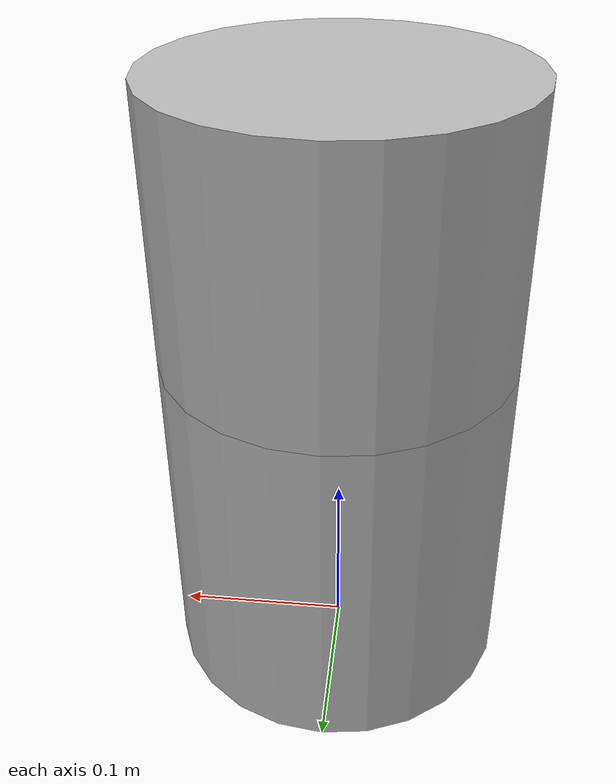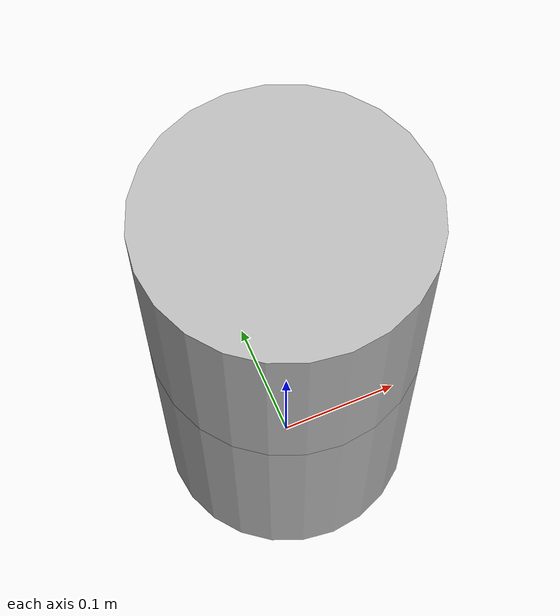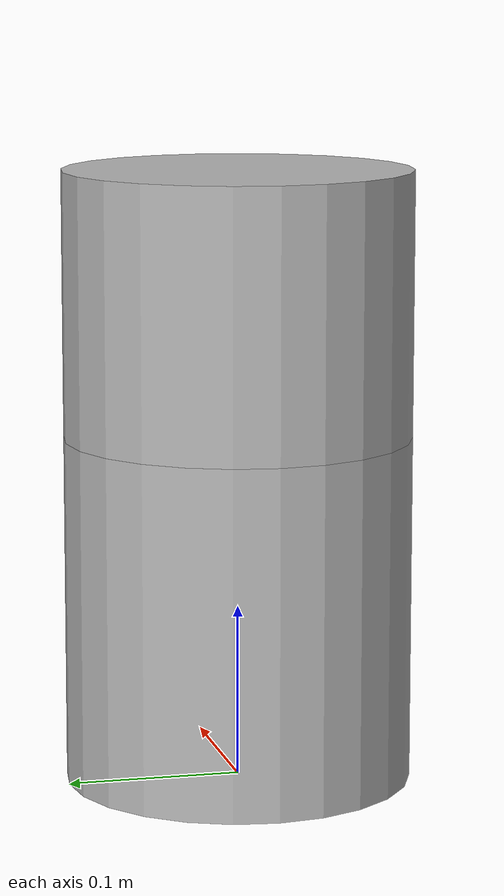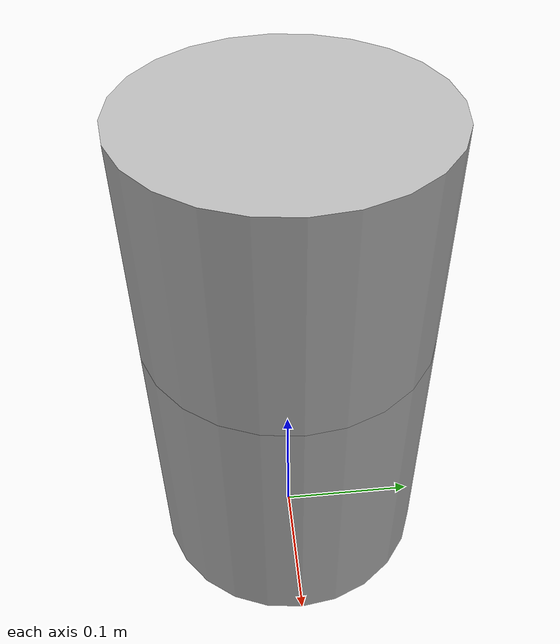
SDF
<sdf version='1.6'>
  <model name='elastic_robot_2dof'>
    <plugin name='complete_joint_state_publisher' filename='libgazebo_ros_complete_joint_state_publisher.so'>
      <robotNamespace>/elastic</robotNamespace>
      <jointName>joint1_motor,joint1_spring</jointName>
      <updateRate>1000.0</updateRate>
      <alwaysOn>true</alwaysOn>
    </plugin>
    <plugin name='complete_joint_state_publisher' filename='libgazebo_ros_complete_joint_state_publisher.so'>
      <robotNamespace>/motor</robotNamespace>
      <jointName>joint1_motor</jointName>
      <updateRate>1000.0</updateRate>
      <alwaysOn>true</alwaysOn>
    </plugin>
    <plugin name='joint_state_subscriber' filename='libgazebo_ros_joint_state_subscriber.so'>
      <robotNamespace>/sp</robotNamespace>
      <jointName>joint1_motor</jointName>
      <updateRate>1000.0</updateRate>
      <alwaysOn>true</alwaysOn>
    </plugin>
    <link name='base'>
      <pose frame=''>0 0 0 0 -0 0</pose>
      <inertial>
        <pose frame=''>0 0 0 0 -0 0</pose>
        <mass>4</mass>
        <inertia>
          <ixx>0</ixx>
          <ixy>0</ixy>
          <ixz>0</ixz>
          <iyy>0</iyy>
          <iyz>0</iyz>
          <izz>0.1</izz>
        </inertia>
      </inertial>
      <visual name='base_visual'>
        <pose frame=''>0 0 0.1 0 -0 0</pose>
        <geometry>
          <cylinder>
            <length>0.2</length>
            <radius>0.1</radius>
          </cylinder>
        </geometry>
      </visual>
    </link>
    <joint name='root_joint' type='revolute'>
      <child>base</child>
      <parent>world</parent>
      <axis>
        <limit>
          <lower>0</lower>
          <upper>0</upper>
        </limit>
        <dynamics>
          <damping>0</damping>
          <friction>0</friction>
          <spring_reference>0</spring_reference>
          <spring_stiffness>0</spring_stiffness>
        </dynamics>
        <use_parent_model_frame>1</use_parent_model_frame>
        <xyz>0 0 1</xyz>
      </axis>
    </joint>
    <link name='motor1'>
      <pose frame=''>0 0 0 0 -0 0</pose>
      <inertial>
        <pose frame=''>0 0 0 0 -0 0</pose>
        <mass>4</mass>
        <inertia>
          <ixx>0</ixx>
          <ixy>0</ixy>
          <ixz>0</ixz>
          <iyy>0</iyy>
          <iyz>0</iyz>
          <izz>0.1</izz>
        </inertia>
      </inertial>
    </link>
    <joint name='joint1_motor' type='revolute'>
      <child>motor1</child>
      <parent>base</parent>
      <axis>
        <xyz>0 0 1</xyz>
        <limit>
          <lower>-2.74</lower>
          <upper>2.74</upper>
          <effort>80</effort>
          <velocity>0.7</velocity>
        </limit>
        <dynamics>
          <spring_reference>0</spring_reference>
          <spring_stiffness>0.000000</spring_stiffness>
          <damping>18.8 00000</damping>
          <friction>5.00000</friction>
        </dynamics>
        <use_parent_model_frame>1</use_parent_model_frame>
      </axis>
    </joint>
    <link name='link1'>
      <pose frame=''>0 0 0 0 -0 0</pose>
      <inertial>
        <pose frame=''>0 0 0 0 -0 0</pose>
        <mass>4</mass>
        <inertia>
          <ixx>0</ixx>
          <ixy>0</ixy>
          <ixz>0</ixz>
          <iyy>0</iyy>
          <iyz>0</iyz>
          <izz>2.0</izz>
        </inertia>
      </inertial>
      <visual name='link1_visual'>
        <pose frame=''>0 0 0.27645 0 -0 0</pose>
        <geometry>
          <cylinder>
            <length>0.1529</length>
            <radius>0.1</radius>
          </cylinder>
        </geometry>
      </visual>
    </link>
    <joint name='joint1_spring' type='revolute'>
      <child>link1</child>
      <parent>motor1</parent>
      <axis>
        <xyz>0 0 1</xyz>
        <limit>
          <lower>-2.74</lower>
          <upper>2.74</upper>
          <effort>80</effort>
          <velocity>1.5</velocity>
        </limit>
        <dynamics>
          <spring_reference>0</spring_reference>
          <spring_stiffness>920.000000</spring_stiffness>
          <damping>18.000000</damping>
          <friction>0.00000</friction>
        </dynamics>
        <use_parent_model_frame>1</use_parent_model_frame>
      </axis>
    </joint>
    <static>0</static>
  </model>
</sdf>
